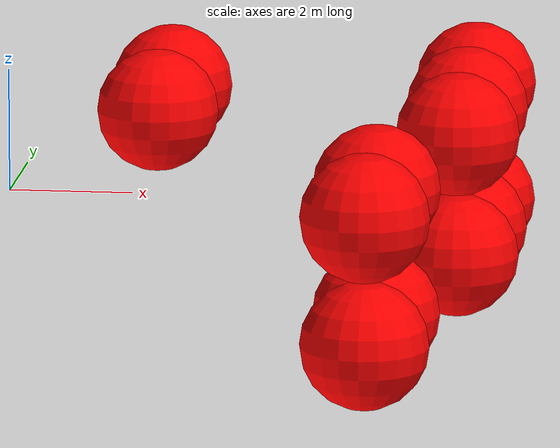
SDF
<sdf version="1.8">
 <world name="3d_world">
  <model name="obstacle_1" canonical_link="obstacle">
   <static>true</static>
   <pose relative_to="world">7.23 0.47 -1.00 0 0 0</pose>
   <link name="obstacle">
    <pose relative_to="__model__">0.0 0 0.0 0 0 0</pose>
    <visual name="visual">
     <geometry><sphere><radius>1.00</radius></sphere></geometry>
     <material>
      <ambient>1.0 0.0 0.0 1</ambient>
      <diffuse>1.0 0.0 0.0 1</diffuse>
      <specular>1.0 0.0 0.0 1</specular>
     </material>
    </visual>
    <collision name="collision"><geometry><sphere><radius>1.00</radius></sphere></geometry></collision>
    <enable_gravity>false</enable_gravity>
   </link>
   <plugin filename="ignition-gazebo-velocity-control-system" name="ignition::gazebo::systems::VelocityControl">
    <initial_linear>0.00 0.00 0.00</initial_linear>
    <initial_angular>0 0 0</initial_angular>
   </plugin>
   <plugin filename="ignition-gazebo-odometry-publisher-system" name="ignition::gazebo::systems::OdometryPublisher">
    <dimensions>3</dimensions>
   </plugin>
  </model>
  <model name="obstacle_2" canonical_link="obstacle">
   <static>true</static>
   <pose relative_to="world">7.23 2.47 -1.00 0 0 0</pose>
   <link name="obstacle">
    <pose relative_to="__model__">0.0 0 0.0 0 0 0</pose>
    <visual name="visual">
     <geometry><sphere><radius>1.00</radius></sphere></geometry>
     <material>
      <ambient>1.0 0.0 0.0 1</ambient>
      <diffuse>1.0 0.0 0.0 1</diffuse>
      <specular>1.0 0.0 0.0 1</specular>
     </material>
    </visual>
    <collision name="collision"><geometry><sphere><radius>1.00</radius></sphere></geometry></collision>
    <enable_gravity>false</enable_gravity>
   </link>
   <plugin filename="ignition-gazebo-velocity-control-system" name="ignition::gazebo::systems::VelocityControl">
    <initial_linear>0.00 0.00 0.00</initial_linear>
    <initial_angular>0 0 0</initial_angular>
   </plugin>
   <plugin filename="ignition-gazebo-odometry-publisher-system" name="ignition::gazebo::systems::OdometryPublisher">
    <dimensions>3</dimensions>
   </plugin>
  </model>
  <model name="obstacle_3" canonical_link="obstacle">
   <static>true</static>
   <pose relative_to="world">7.23 4.47 -1.00 0 0 0</pose>
   <link name="obstacle">
    <pose relative_to="__model__">0.0 0 0.0 0 0 0</pose>
    <visual name="visual">
     <geometry><sphere><radius>1.00</radius></sphere></geometry>
     <material>
      <ambient>1.0 0.0 0.0 1</ambient>
      <diffuse>1.0 0.0 0.0 1</diffuse>
      <specular>1.0 0.0 0.0 1</specular>
     </material>
    </visual>
    <collision name="collision"><geometry><sphere><radius>1.00</radius></sphere></geometry></collision>
    <enable_gravity>false</enable_gravity>
   </link>
   <plugin filename="ignition-gazebo-velocity-control-system" name="ignition::gazebo::systems::VelocityControl">
    <initial_linear>0.00 0.00 0.00</initial_linear>
    <initial_angular>0 0 0</initial_angular>
   </plugin>
   <plugin filename="ignition-gazebo-odometry-publisher-system" name="ignition::gazebo::systems::OdometryPublisher">
    <dimensions>3</dimensions>
   </plugin>
  </model>
  <model name="obstacle_4" canonical_link="obstacle">
   <static>true</static>
   <pose relative_to="world">7.23 0.47 1.00 0 0 0</pose>
   <link name="obstacle">
    <pose relative_to="__model__">0.0 0 0.0 0 0 0</pose>
    <visual name="visual">
     <geometry><sphere><radius>1.00</radius></sphere></geometry>
     <material>
      <ambient>1.0 0.0 0.0 1</ambient>
      <diffuse>1.0 0.0 0.0 1</diffuse>
      <specular>1.0 0.0 0.0 1</specular>
     </material>
    </visual>
    <collision name="collision"><geometry><sphere><radius>1.00</radius></sphere></geometry></collision>
    <enable_gravity>false</enable_gravity>
   </link>
   <plugin filename="ignition-gazebo-velocity-control-system" name="ignition::gazebo::systems::VelocityControl">
    <initial_linear>0.00 0.00 0.00</initial_linear>
    <initial_angular>0 0 0</initial_angular>
   </plugin>
   <plugin filename="ignition-gazebo-odometry-publisher-system" name="ignition::gazebo::systems::OdometryPublisher">
    <dimensions>3</dimensions>
   </plugin>
  </model>
  <model name="obstacle_5" canonical_link="obstacle">
   <static>true</static>
   <pose relative_to="world">7.23 2.47 1.00 0 0 0</pose>
   <link name="obstacle">
    <pose relative_to="__model__">0.0 0 0.0 0 0 0</pose>
    <visual name="visual">
     <geometry><sphere><radius>1.00</radius></sphere></geometry>
     <material>
      <ambient>1.0 0.0 0.0 1</ambient>
      <diffuse>1.0 0.0 0.0 1</diffuse>
      <specular>1.0 0.0 0.0 1</specular>
     </material>
    </visual>
    <collision name="collision"><geometry><sphere><radius>1.00</radius></sphere></geometry></collision>
    <enable_gravity>false</enable_gravity>
   </link>
   <plugin filename="ignition-gazebo-velocity-control-system" name="ignition::gazebo::systems::VelocityControl">
    <initial_linear>0.00 0.00 0.00</initial_linear>
    <initial_angular>0 0 0</initial_angular>
   </plugin>
   <plugin filename="ignition-gazebo-odometry-publisher-system" name="ignition::gazebo::systems::OdometryPublisher">
    <dimensions>3</dimensions>
   </plugin>
  </model>
  <model name="obstacle_6" canonical_link="obstacle">
   <static>true</static>
   <pose relative_to="world">7.23 4.47 1.00 0 0 0</pose>
   <link name="obstacle">
    <pose relative_to="__model__">0.0 0 0.0 0 0 0</pose>
    <visual name="visual">
     <geometry><sphere><radius>1.00</radius></sphere></geometry>
     <material>
      <ambient>1.0 0.0 0.0 1</ambient>
      <diffuse>1.0 0.0 0.0 1</diffuse>
      <specular>1.0 0.0 0.0 1</specular>
     </material>
    </visual>
    <collision name="collision"><geometry><sphere><radius>1.00</radius></sphere></geometry></collision>
    <enable_gravity>false</enable_gravity>
   </link>
   <plugin filename="ignition-gazebo-velocity-control-system" name="ignition::gazebo::systems::VelocityControl">
    <initial_linear>0.00 0.00 0.00</initial_linear>
    <initial_angular>0 0 0</initial_angular>
   </plugin>
   <plugin filename="ignition-gazebo-odometry-publisher-system" name="ignition::gazebo::systems::OdometryPublisher">
    <dimensions>3</dimensions>
   </plugin>
  </model>
  <model name="obstacle_15" canonical_link="obstacle">
   <static>true</static>
   <pose relative_to="world">2.20 1.74 1.00 0 0 0</pose>
   <link name="obstacle">
    <pose relative_to="__model__">0.0 0 0.0 0 0 0</pose>
    <visual name="visual">
     <geometry><sphere><radius>1.00</radius></sphere></geometry>
     <material>
      <ambient>1.0 0.0 0.0 1</ambient>
      <diffuse>1.0 0.0 0.0 1</diffuse>
      <specular>1.0 0.0 0.0 1</specular>
     </material>
    </visual>
    <collision name="collision"><geometry><sphere><radius>1.00</radius></sphere></geometry></collision>
    <enable_gravity>false</enable_gravity>
   </link>
   <plugin filename="ignition-gazebo-velocity-control-system" name="ignition::gazebo::systems::VelocityControl">
    <initial_linear>0.00 0.00 0.00</initial_linear>
    <initial_angular>0 0 0</initial_angular>
   </plugin>
   <plugin filename="ignition-gazebo-odometry-publisher-system" name="ignition::gazebo::systems::OdometryPublisher">
    <dimensions>3</dimensions>
   </plugin>
  </model>
  <model name="obstacle_16" canonical_link="obstacle">
   <static>true</static>
   <pose relative_to="world">2.20 3.74 1.00 0 0 0</pose>
   <link name="obstacle">
    <pose relative_to="__model__">0.0 0 0.0 0 0 0</pose>
    <visual name="visual">
     <geometry><sphere><radius>1.00</radius></sphere></geometry>
     <material>
      <ambient>1.0 0.0 0.0 1</ambient>
      <diffuse>1.0 0.0 0.0 1</diffuse>
      <specular>1.0 0.0 0.0 1</specular>
     </material>
    </visual>
    <collision name="collision"><geometry><sphere><radius>1.00</radius></sphere></geometry></collision>
    <enable_gravity>false</enable_gravity>
   </link>
   <plugin filename="ignition-gazebo-velocity-control-system" name="ignition::gazebo::systems::VelocityControl">
    <initial_linear>0.00 0.00 0.00</initial_linear>
    <initial_angular>0 0 0</initial_angular>
   </plugin>
   <plugin filename="ignition-gazebo-odometry-publisher-system" name="ignition::gazebo::systems::OdometryPublisher">
    <dimensions>3</dimensions>
   </plugin>
  </model>
  <model name="obstacle_17" canonical_link="obstacle">
   <static>true</static>
   <pose relative_to="world">6.27 -5.45 -1.00 0 0 0</pose>
   <link name="obstacle">
    <pose relative_to="__model__">0.0 0 0.0 0 0 0</pose>
    <visual name="visual">
     <geometry><sphere><radius>1.00</radius></sphere></geometry>
     <material>
      <ambient>1.0 0.0 0.0 1</ambient>
      <diffuse>1.0 0.0 0.0 1</diffuse>
      <specular>1.0 0.0 0.0 1</specular>
     </material>
    </visual>
    <collision name="collision"><geometry><sphere><radius>1.00</radius></sphere></geometry></collision>
    <enable_gravity>false</enable_gravity>
   </link>
   <plugin filename="ignition-gazebo-velocity-control-system" name="ignition::gazebo::systems::VelocityControl">
    <initial_linear>0.00 0.00 0.00</initial_linear>
    <initial_angular>0 0 0</initial_angular>
   </plugin>
   <plugin filename="ignition-gazebo-odometry-publisher-system" name="ignition::gazebo::systems::OdometryPublisher">
    <dimensions>3</dimensions>
   </plugin>
  </model>
  <model name="obstacle_18" canonical_link="obstacle">
   <static>true</static>
   <pose relative_to="world">6.27 -3.45 -1.00 0 0 0</pose>
   <link name="obstacle">
    <pose relative_to="__model__">0.0 0 0.0 0 0 0</pose>
    <visual name="visual">
     <geometry><sphere><radius>1.00</radius></sphere></geometry>
     <material>
      <ambient>1.0 0.0 0.0 1</ambient>
      <diffuse>1.0 0.0 0.0 1</diffuse>
      <specular>1.0 0.0 0.0 1</specular>
     </material>
    </visual>
    <collision name="collision"><geometry><sphere><radius>1.00</radius></sphere></geometry></collision>
    <enable_gravity>false</enable_gravity>
   </link>
   <plugin filename="ignition-gazebo-velocity-control-system" name="ignition::gazebo::systems::VelocityControl">
    <initial_linear>0.00 0.00 0.00</initial_linear>
    <initial_angular>0 0 0</initial_angular>
   </plugin>
   <plugin filename="ignition-gazebo-odometry-publisher-system" name="ignition::gazebo::systems::OdometryPublisher">
    <dimensions>3</dimensions>
   </plugin>
  </model>
  <model name="obstacle_19" canonical_link="obstacle">
   <static>true</static>
   <pose relative_to="world">6.27 -5.45 1.00 0 0 0</pose>
   <link name="obstacle">
    <pose relative_to="__model__">0.0 0 0.0 0 0 0</pose>
    <visual name="visual">
     <geometry><sphere><radius>1.00</radius></sphere></geometry>
     <material>
      <ambient>1.0 0.0 0.0 1</ambient>
      <diffuse>1.0 0.0 0.0 1</diffuse>
      <specular>1.0 0.0 0.0 1</specular>
     </material>
    </visual>
    <collision name="collision"><geometry><sphere><radius>1.00</radius></sphere></geometry></collision>
    <enable_gravity>false</enable_gravity>
   </link>
   <plugin filename="ignition-gazebo-velocity-control-system" name="ignition::gazebo::systems::VelocityControl">
    <initial_linear>0.00 0.00 0.00</initial_linear>
    <initial_angular>0 0 0</initial_angular>
   </plugin>
   <plugin filename="ignition-gazebo-odometry-publisher-system" name="ignition::gazebo::systems::OdometryPublisher">
    <dimensions>3</dimensions>
   </plugin>
  </model>
  <model name="obstacle_20" canonical_link="obstacle">
   <static>true</static>
   <pose relative_to="world">6.27 -3.45 1.00 0 0 0</pose>
   <link name="obstacle">
    <pose relative_to="__model__">0.0 0 0.0 0 0 0</pose>
    <visual name="visual">
     <geometry><sphere><radius>1.00</radius></sphere></geometry>
     <material>
      <ambient>1.0 0.0 0.0 1</ambient>
      <diffuse>1.0 0.0 0.0 1</diffuse>
      <specular>1.0 0.0 0.0 1</specular>
     </material>
    </visual>
    <collision name="collision"><geometry><sphere><radius>1.00</radius></sphere></geometry></collision>
    <enable_gravity>false</enable_gravity>
   </link>
   <plugin filename="ignition-gazebo-velocity-control-system" name="ignition::gazebo::systems::VelocityControl">
    <initial_linear>0.00 0.00 0.00</initial_linear>
    <initial_angular>0 0 0</initial_angular>
   </plugin>
   <plugin filename="ignition-gazebo-odometry-publisher-system" name="ignition::gazebo::systems::OdometryPublisher">
    <dimensions>3</dimensions>
   </plugin>
  </model>
 </world>
</sdf>
